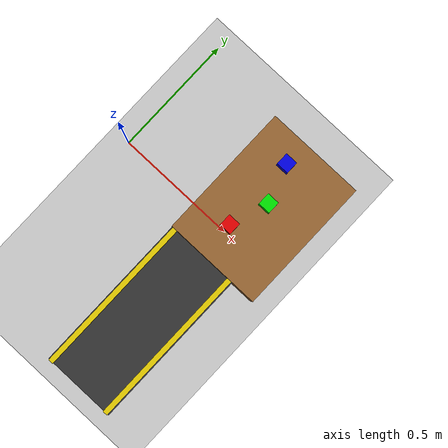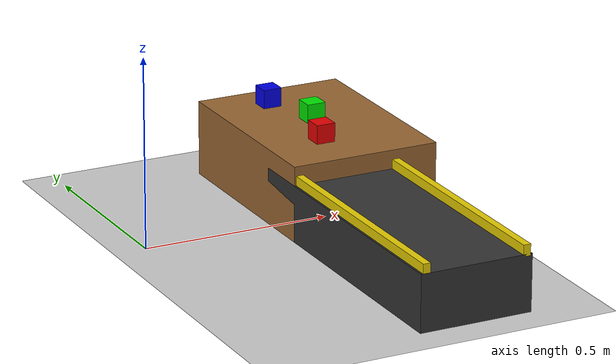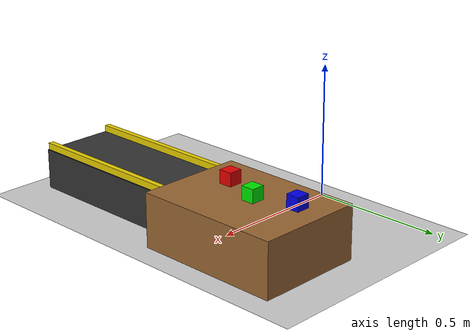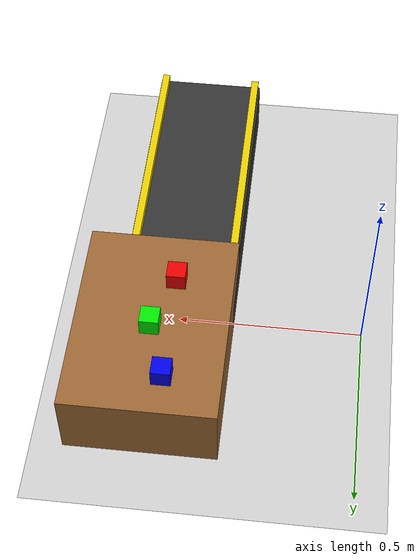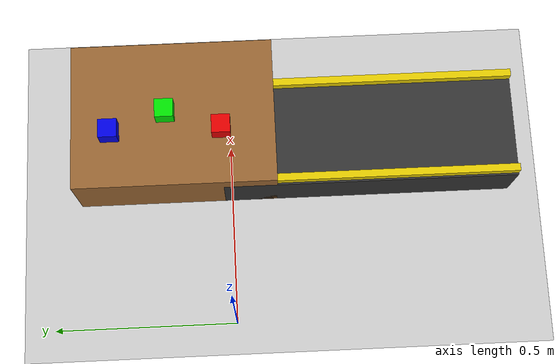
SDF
<?xml version="1.0" ?>
<sdf version="1.10">
  <world name="pick_place">
    <physics name="1ms" type="ignored">
      <max_step_size>0.001</max_step_size>
      <real_time_factor>1.0</real_time_factor>
    </physics>

    <plugin filename="gz-sim-physics-system" name="gz::sim::systems::Physics"/>
    <plugin filename="gz-sim-user-commands-system" name="gz::sim::systems::UserCommands"/>
    <plugin filename="gz-sim-scene-broadcaster-system" name="gz::sim::systems::SceneBroadcaster"/>
    <plugin filename="gz-sim-sensors-system" name="gz::sim::systems::Sensors">
      <render_engine>ogre2</render_engine>
    </plugin>

    <light type="directional" name="sun">
      <cast_shadows>true</cast_shadows>
      <pose>0 0 10 0 0 0</pose>
      <diffuse>0.9 0.9 0.9 1</diffuse>
      <specular>0.3 0.3 0.3 1</specular>
      <direction>-0.4 0.2 -0.9</direction>
    </light>

    <model name="ground_plane">
      <static>true</static>
      <link name="link">
        <collision name="collision">
          <geometry><plane><normal>0 0 1</normal><size>20 20</size></plane></geometry>
        </collision>
        <visual name="visual">
          <geometry><plane><normal>0 0 1</normal><size>20 20</size></plane></geometry>
          <material><ambient>0.8 0.8 0.8 1</ambient><diffuse>0.8 0.8 0.8 1</diffuse></material>
        </visual>
      </link>
    </model>

    <!-- Source table: top surface at z = 0.20 -->
    <model name="table">
      <static>true</static>
      <pose>0.55 0.15 0.10 0 0 0</pose>
      <link name="link">
        <collision name="collision">
          <geometry><box><size>0.40 0.55 0.20</size></box></geometry>
        </collision>
        <visual name="visual">
          <geometry><box><size>0.40 0.55 0.20</size></box></geometry>
          <material><ambient>0.6 0.4 0.2 1</ambient><diffuse>0.6 0.4 0.2 1</diffuse></material>
        </visual>
      </link>
    </model>

    <!-- Conveyor belt: place target, top surface at z = 0.15 -->
    <model name="conveyor">
      <static>true</static>
      <pose>0.50 -0.38 0.075 0 0 0</pose>
      <link name="link">
        <collision name="collision">
          <geometry><box><size>0.30 0.80 0.15</size></box></geometry>
        </collision>
        <visual name="visual">
          <geometry><box><size>0.30 0.80 0.15</size></box></geometry>
          <material><ambient>0.15 0.15 0.15 1</ambient><diffuse>0.2 0.2 0.2 1</diffuse></material>
        </visual>
      </link>
    </model>
    <!-- Belt side rails (visual only), for an industrial look -->
    <model name="rail_left">
      <static>true</static>
      <pose>0.365 -0.38 0.16 0 0 0</pose>
      <link name="link">
        <visual name="visual">
          <geometry><box><size>0.02 0.80 0.03</size></box></geometry>
          <material><ambient>0.8 0.7 0.0 1</ambient><diffuse>0.9 0.8 0.0 1</diffuse></material>
        </visual>
      </link>
    </model>
    <model name="rail_right">
      <static>true</static>
      <pose>0.635 -0.38 0.16 0 0 0</pose>
      <link name="link">
        <visual name="visual">
          <geometry><box><size>0.02 0.80 0.03</size></box></geometry>
          <material><ambient>0.8 0.7 0.0 1</ambient><diffuse>0.9 0.8 0.0 1</diffuse></material>
        </visual>
      </link>
    </model>

    <!-- Three coloured parts on the table top (centre z = 0.225). -->
    <model name="part_red">
      <static>true</static>
      <pose>0.50 0.02 0.225 0 0 0</pose>
      <link name="link">
        <inertial><mass>0.05</mass>
          <inertia><ixx>2e-5</ixx><iyy>2e-5</iyy><izz>2e-5</izz><ixy>0</ixy><ixz>0</ixz><iyz>0</iyz></inertia>
        </inertial>
        <collision name="collision"><geometry><box><size>0.05 0.05 0.05</size></box></geometry></collision>
        <visual name="visual"><geometry><box><size>0.05 0.05 0.05</size></box></geometry>
          <material><ambient>0.8 0.0 0.0 1</ambient><diffuse>0.9 0.0 0.0 1</diffuse></material>
        </visual>
      </link>
    </model>
    <model name="part_green">
      <static>true</static>
      <pose>0.55 0.17 0.225 0 0 0</pose>
      <link name="link">
        <inertial><mass>0.05</mass>
          <inertia><ixx>2e-5</ixx><iyy>2e-5</iyy><izz>2e-5</izz><ixy>0</ixy><ixz>0</ixz><iyz>0</iyz></inertia>
        </inertial>
        <collision name="collision"><geometry><box><size>0.05 0.05 0.05</size></box></geometry></collision>
        <visual name="visual"><geometry><box><size>0.05 0.05 0.05</size></box></geometry>
          <material><ambient>0.0 0.8 0.0 1</ambient><diffuse>0.0 0.9 0.0 1</diffuse></material>
        </visual>
      </link>
    </model>
    <model name="part_blue">
      <static>true</static>
      <pose>0.50 0.32 0.225 0 0 0</pose>
      <link name="link">
        <inertial><mass>0.05</mass>
          <inertia><ixx>2e-5</ixx><iyy>2e-5</iyy><izz>2e-5</izz><ixy>0</ixy><ixz>0</ixz><iyz>0</iyz></inertia>
        </inertial>
        <collision name="collision"><geometry><box><size>0.05 0.05 0.05</size></box></geometry></collision>
        <visual name="visual"><geometry><box><size>0.05 0.05 0.05</size></box></geometry>
          <material><ambient>0.0 0.0 0.8 1</ambient><diffuse>0.0 0.0 0.9 1</diffuse></material>
        </visual>
      </link>
    </model>

    <!-- Wide-angle scene camera for recording the whole workcell. -->
    <model name="scene_camera">
      <static>true</static>
      <pose>1.9 -0.2 1.2 0 0.62 3.0</pose>
      <link name="link">
        <sensor name="scene" type="camera">
          <update_rate>12</update_rate>
          <always_on>true</always_on>
          <topic>scene_camera</topic>
          <camera>
            <horizontal_fov>1.2</horizontal_fov>
            <image><width>800</width><height>600</height><format>R8G8B8</format></image>
            <clip><near>0.05</near><far>10.0</far></clip>
          </camera>
        </sensor>
      </link>
    </model>

    <!-- Downward-looking RGB-D camera above the table. -->
    <model name="rgbd_camera">
      <static>true</static>
      <pose>0.55 0.15 0.85 0 1.5707963 0</pose>
      <link name="link">
        <sensor name="rgbd" type="rgbd_camera">
          <update_rate>8</update_rate>
          <always_on>true</always_on>
          <visualize>true</visualize>
          <topic>rgbd_camera</topic>
          <camera>
            <horizontal_fov>1.0472</horizontal_fov>
            <image><width>640</width><height>480</height><format>R8G8B8</format></image>
            <clip><near>0.05</near><far>5.0</far></clip>
          </camera>
        </sensor>
      </link>
    </model>
  </world>
</sdf>
